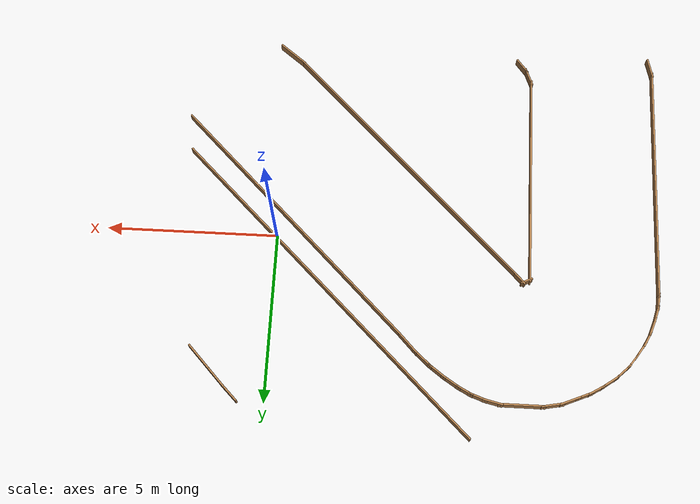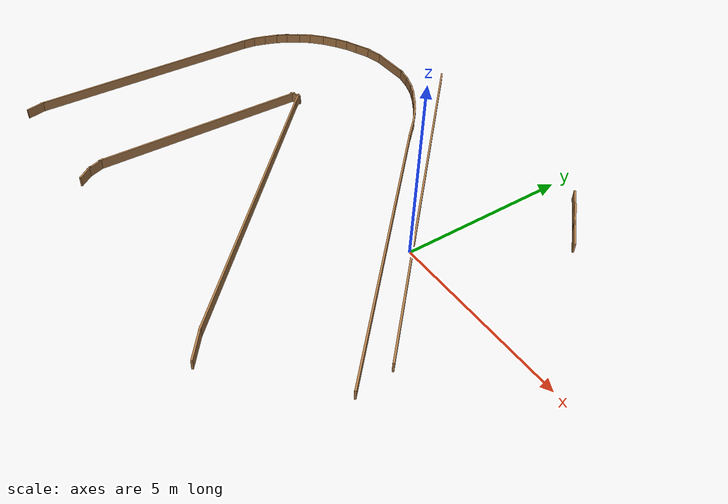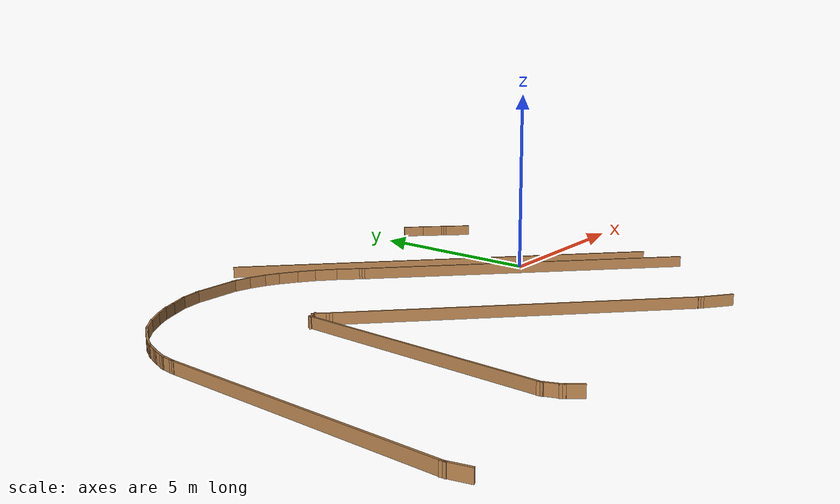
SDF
<sdf version="1.6">
 <model name="rover_racetrack">
  <pose>3.369 -0.8264 0 0 -0 0</pose>
  <link name="Wall_156">
   <collision name="Wall_156_Collision">
    <geometry><box><size>0.622658 0.05 0.3</size></box></geometry>
    <pose>0 0 0.15 0 -0 0</pose>
   </collision>
   <visual name="Wall_156_Visual">
    <pose>0 0 0.15 0 -0 0</pose>
    <geometry><box><size>0.622658 0.05 0.3</size></box></geometry>
    <material>
     <script><uri>file://media/materials/scripts/gazebo.material</uri><name>Gazebo/Wood</name></script>
     <ambient>0.435294 0.796078 0.67451 1</ambient>
    </material>
   </visual>
   <pose>-14.4098 -5.17189 0 0 -0 1.81577</pose>
  </link>
  <link name="Wall_158">
   <collision name="Wall_158_Collision">
    <geometry><box><size>7.25 0.05 0.3</size></box></geometry>
    <pose>0 0 0.15 0 -0 0</pose>
   </collision>
   <visual name="Wall_158_Visual">
    <pose>0 0 0.15 0 -0 0</pose>
    <geometry><box><size>7.25 0.05 0.3</size></box></geometry>
    <material>
     <script><uri>file://media/materials/scripts/gazebo.material</uri><name>Gazebo/Wood</name></script>
     <ambient>0.435294 0.796078 0.67451 1</ambient>
    </material>
   </visual>
   <pose>-14.4671 -1.39261 0 0 -0 1.5708</pose>
  </link>
  <link name="Wall_160">
   <collision name="Wall_160_Collision">
    <geometry><box><size>0.535083 0.05 0.3</size></box></geometry>
    <pose>0 0 0.15 0 -0 0</pose>
   </collision>
   <visual name="Wall_160_Visual">
    <pose>0 0 0.15 0 -0 0</pose>
    <geometry><box><size>0.535083 0.05 0.3</size></box></geometry>
    <material>
     <script><uri>file://media/materials/scripts/gazebo.material</uri><name>Gazebo/Wood</name></script>
     <ambient>0.435294 0.796078 0.67451 1</ambient>
    </material>
   </visual>
   <pose>-14.4492 2.34909 0 0 -0 1.47761</pose>
  </link>
  <link name="Wall_161">
   <collision name="Wall_161_Collision">
    <geometry><box><size>0.532063 0.05 0.3</size></box></geometry>
    <pose>0 0 0.15 0 -0 0</pose>
   </collision>
   <visual name="Wall_161_Visual">
    <pose>0 0 0.15 0 -0 0</pose>
    <geometry><box><size>0.532063 0.05 0.3</size></box></geometry>
    <material>
     <script><uri>file://media/materials/scripts/gazebo.material</uri><name>Gazebo/Wood</name></script>
     <ambient>0.435294 0.796078 0.67451 1</ambient>
    </material>
   </visual>
   <pose>-14.3815 2.72521 0 0 -0 1.30683</pose>
  </link>
  <link name="Wall_162">
   <collision name="Wall_162_Collision">
    <geometry><box><size>0.572452 0.05 0.3</size></box></geometry>
    <pose>0 0 0.15 0 -0 0</pose>
   </collision>
   <visual name="Wall_162_Visual">
    <pose>0 0 0.15 0 -0 0</pose>
    <geometry><box><size>0.572452 0.05 0.3</size></box></geometry>
    <material>
     <script><uri>file://media/materials/scripts/gazebo.material</uri><name>Gazebo/Wood</name></script>
     <ambient>0.435294 0.796078 0.67451 1</ambient>
    </material>
   </visual>
   <pose>-14.2618 3.109 0 0 -0 1.23412</pose>
  </link>
  <link name="Wall_163">
   <collision name="Wall_163_Collision">
    <geometry><box><size>0.50664 0.05 0.3</size></box></geometry>
    <pose>0 0 0.15 0 -0 0</pose>
   </collision>
   <visual name="Wall_163_Visual">
    <pose>0 0 0.15 0 -0 0</pose>
    <geometry><box><size>0.50664 0.05 0.3</size></box></geometry>
    <material>
     <script><uri>file://media/materials/scripts/gazebo.material</uri><name>Gazebo/Wood</name></script>
     <ambient>0.435294 0.796078 0.67451 1</ambient>
    </material>
   </visual>
   <pose>-14.1123 3.46786 0 0 -0 1.10715</pose>
  </link>
  <link name="Wall_164">
   <collision name="Wall_164_Collision">
    <geometry><box><size>0.589627 0.05 0.3</size></box></geometry>
    <pose>0 0 0.15 0 -0 0</pose>
   </collision>
   <visual name="Wall_164_Visual">
    <pose>0 0 0.15 0 -0 0</pose>
    <geometry><box><size>0.589627 0.05 0.3</size></box></geometry>
    <material>
     <script><uri>file://media/materials/scripts/gazebo.material</uri><name>Gazebo/Wood</name></script>
     <ambient>0.435294 0.796078 0.67451 1</ambient>
    </material>
   </visual>
   <pose>-13.9129 3.81177 0 0 -0 0.995372</pose>
  </link>
  <link name="Wall_165">
   <collision name="Wall_165_Collision">
    <geometry><box><size>0.520845 0.05 0.3</size></box></geometry>
    <pose>0 0 0.15 0 -0 0</pose>
   </collision>
   <visual name="Wall_165_Visual">
    <pose>0 0 0.15 0 -0 0</pose>
    <geometry><box><size>0.520845 0.05 0.3</size></box></geometry>
    <material>
     <script><uri>file://media/materials/scripts/gazebo.material</uri><name>Gazebo/Wood</name></script>
     <ambient>0.435294 0.796078 0.67451 1</ambient>
    </material>
   </visual>
   <pose>-13.6837 4.14571 0 0 -0 0.938048</pose>
  </link>
  <link name="Wall_166">
   <collision name="Wall_166_Collision">
    <geometry><box><size>0.636412 0.05 0.3</size></box></geometry>
    <pose>0 0 0.15 0 -0 0</pose>
   </collision>
   <visual name="Wall_166_Visual">
    <pose>0 0 0.15 0 -0 0</pose>
    <geometry><box><size>0.636412 0.05 0.3</size></box></geometry>
    <material>
     <script><uri>file://media/materials/scripts/gazebo.material</uri><name>Gazebo/Wood</name></script>
     <ambient>0.435294 0.796078 0.67451 1</ambient>
    </material>
   </visual>
   <pose>-13.3996 4.46469 0 0 -0 0.770906</pose>
  </link>
  <link name="Wall_167">
   <collision name="Wall_167_Collision">
    <geometry><box><size>0.628586 0.05 0.3</size></box></geometry>
    <pose>0 0 0.15 0 -0 0</pose>
   </collision>
   <visual name="Wall_167_Visual">
    <pose>0 0 0.15 0 -0 0</pose>
    <geometry><box><size>0.628586 0.05 0.3</size></box></geometry>
    <material>
     <script><uri>file://media/materials/scripts/gazebo.material</uri><name>Gazebo/Wood</name></script>
     <ambient>0.435294 0.796078 0.67451 1</ambient>
    </material>
   </visual>
   <pose>-13.0307 4.77372 0 0 -0 0.622671</pose>
  </link>
  <link name="Wall_169">
   <collision name="Wall_169_Collision">
    <geometry><box><size>0.556876 0.05 0.3</size></box></geometry>
    <pose>0 0 0.15 0 -0 0</pose>
   </collision>
   <visual name="Wall_169_Visual">
    <pose>0 0 0.15 0 -0 0</pose>
    <geometry><box><size>0.556876 0.05 0.3</size></box></geometry>
    <material>
     <script><uri>file://media/materials/scripts/gazebo.material</uri><name>Gazebo/Wood</name></script>
     <ambient>0.435294 0.796078 0.67451 1</ambient>
    </material>
   </visual>
   <pose>-12.6619 5.01794 0 0 -0 0.54042</pose>
  </link>
  <link name="Wall_170">
   <collision name="Wall_170_Collision">
    <geometry><box><size>0.529585 0.05 0.3</size></box></geometry>
    <pose>0 0 0.15 0 -0 0</pose>
   </collision>
   <visual name="Wall_170_Visual">
    <pose>0 0 0.15 0 -0 0</pose>
    <geometry><box><size>0.529585 0.05 0.3</size></box></geometry>
    <material>
     <script><uri>file://media/materials/scripts/gazebo.material</uri><name>Gazebo/Wood</name></script>
     <ambient>0.435294 0.796078 0.67451 1</ambient>
    </material>
   </visual>
   <pose>-12.313 5.19737 0 0 -0 0.404892</pose>
  </link>
  <link name="Wall_171">
   <collision name="Wall_171_Collision">
    <geometry><box><size>0.636923 0.05 0.3</size></box></geometry>
    <pose>0 0 0.15 0 -0 0</pose>
   </collision>
   <visual name="Wall_171_Visual">
    <pose>0 0 0.15 0 -0 0</pose>
    <geometry><box><size>0.636923 0.05 0.3</size></box></geometry>
    <material>
     <script><uri>file://media/materials/scripts/gazebo.material</uri><name>Gazebo/Wood</name></script>
     <ambient>0.435294 0.796078 0.67451 1</ambient>
    </material>
   </visual>
   <pose>-11.9143 5.36683 0 0 -0 0.399515</pose>
  </link>
  <link name="Wall_172">
   <collision name="Wall_172_Collision">
    <geometry><box><size>0.677854 0.05 0.3</size></box></geometry>
    <pose>0 0 0.15 0 -0 0</pose>
   </collision>
   <visual name="Wall_172_Visual">
    <pose>0 0 0.15 0 -0 0</pose>
    <geometry><box><size>0.677854 0.05 0.3</size></box></geometry>
    <material>
     <script><uri>file://media/materials/scripts/gazebo.material</uri><name>Gazebo/Wood</name></script>
     <ambient>0.435294 0.796078 0.67451 1</ambient>
    </material>
   </visual>
   <pose>-11.4308 5.51137 0 0 -0 0.189988</pose>
  </link>
  <link name="Wall_173">
   <collision name="Wall_173_Collision">
    <geometry><box><size>1.34625 0.05 0.3</size></box></geometry>
    <pose>0 0 0.15 0 -0 0</pose>
   </collision>
   <visual name="Wall_173_Visual">
    <pose>0 0 0.15 0 -0 0</pose>
    <geometry><box><size>1.34625 0.05 0.3</size></box></geometry>
    <material>
     <script><uri>file://media/materials/scripts/gazebo.material</uri><name>Gazebo/Wood</name></script>
     <ambient>0.435294 0.796078 0.67451 1</ambient>
    </material>
   </visual>
   <pose>-10.5735 5.56122 0 0 -0 0</pose>
  </link>
  <link name="Wall_174">
   <collision name="Wall_174_Collision">
    <geometry><box><size>0.590079 0.05 0.3</size></box></geometry>
    <pose>0 0 0.15 0 -0 0</pose>
   </collision>
   <visual name="Wall_174_Visual">
    <pose>0 0 0.15 0 -0 0</pose>
    <geometry><box><size>0.590079 0.05 0.3</size></box></geometry>
    <material>
     <script><uri>file://media/materials/scripts/gazebo.material</uri><name>Gazebo/Wood</name></script>
     <ambient>0.435294 0.796078 0.67451 1</ambient>
    </material>
   </visual>
   <pose>-9.76111 5.51137 0 0 0 -0.228497</pose>
  </link>
  <link name="Wall_175">
   <collision name="Wall_175_Collision">
    <geometry><box><size>0.585197 0.05 0.3</size></box></geometry>
    <pose>0 0 0.15 0 -0 0</pose>
   </collision>
   <visual name="Wall_175_Visual">
    <pose>0 0 0.15 0 -0 0</pose>
    <geometry><box><size>0.585197 0.05 0.3</size></box></geometry>
    <material>
     <script><uri>file://media/materials/scripts/gazebo.material</uri><name>Gazebo/Wood</name></script>
     <ambient>0.435294 0.796078 0.67451 1</ambient>
    </material>
   </visual>
   <pose>-9.34244 5.38677 0 0 0 -0.350728</pose>
  </link>
  <link name="Wall_176">
   <collision name="Wall_176_Collision">
    <geometry><box><size>0.533491 0.05 0.3</size></box></geometry>
    <pose>0 0 0.15 0 -0 0</pose>
   </collision>
   <visual name="Wall_176_Visual">
    <pose>0 0 0.15 0 -0 0</pose>
    <geometry><box><size>0.533491 0.05 0.3</size></box></geometry>
    <material>
     <script><uri>file://media/materials/scripts/gazebo.material</uri><name>Gazebo/Wood</name></script>
     <ambient>0.435294 0.796078 0.67451 1</ambient>
    </material>
   </visual>
   <pose>-8.96862 5.22229 0 0 0 -0.486899</pose>
  </link>
  <link name="Wall_177">
   <collision name="Wall_177_Collision">
    <geometry><box><size>0.661505 0.05 0.3</size></box></geometry>
    <pose>0 0 0.15 0 -0 0</pose>
   </collision>
   <visual name="Wall_177_Visual">
    <pose>0 0 0.15 0 -0 0</pose>
    <geometry><box><size>0.661505 0.05 0.3</size></box></geometry>
    <material>
     <script><uri>file://media/materials/scripts/gazebo.material</uri><name>Gazebo/Wood</name></script>
     <ambient>0.435294 0.796078 0.67451 1</ambient>
    </material>
   </visual>
   <pose>-8.58484 4.99302 0 0 0 -0.577192</pose>
  </link>
  <link name="Wall_178">
   <collision name="Wall_178_Collision">
    <geometry><box><size>0.634467 0.05 0.3</size></box></geometry>
    <pose>0 0 0.15 0 -0 0</pose>
   </collision>
   <visual name="Wall_178_Visual">
    <pose>0 0 0.15 0 -0 0</pose>
    <geometry><box><size>0.634467 0.05 0.3</size></box></geometry>
    <material>
     <script><uri>file://media/materials/scripts/gazebo.material</uri><name>Gazebo/Wood</name></script>
     <ambient>0.435294 0.796078 0.67451 1</ambient>
    </material>
   </visual>
   <pose>-8.17614 4.70892 0 0 0 -0.639386</pose>
  </link>
  <link name="Wall_179">
   <collision name="Wall_179_Collision">
    <geometry><box><size>0.742763 0.05 0.3</size></box></geometry>
    <pose>0 0 0.15 0 -0 0</pose>
   </collision>
   <visual name="Wall_179_Visual">
    <pose>0 0 0.15 0 -0 0</pose>
    <geometry><box><size>0.742763 0.05 0.3</size></box></geometry>
    <material>
     <script><uri>file://media/materials/scripts/gazebo.material</uri><name>Gazebo/Wood</name></script>
     <ambient>0.435294 0.796078 0.67451 1</ambient>
    </material>
   </visual>
   <pose>-7.76245 4.36501 0 0 0 -0.737815</pose>
  </link>
  <link name="Wall_180">
   <collision name="Wall_180_Collision">
    <geometry><box><size>0.848143 0.05 0.3</size></box></geometry>
    <pose>0 0 0.15 0 -0 0</pose>
   </collision>
   <visual name="Wall_180_Visual">
    <pose>0 0 0.15 0 -0 0</pose>
    <geometry><box><size>0.848143 0.05 0.3</size></box></geometry>
    <material>
     <script><uri>file://media/materials/scripts/gazebo.material</uri><name>Gazebo/Wood</name></script>
     <ambient>0.435294 0.796078 0.67451 1</ambient>
    </material>
   </visual>
   <pose>-7.30391 3.91145 0 0 0 -0.815692</pose>
  </link>
  <link name="Wall_182">
   <collision name="Wall_182_Collision">
    <geometry><box><size>9.3305 0.05 0.3</size></box></geometry>
    <pose>0 0 0.15 0 -0 0</pose>
   </collision>
   <visual name="Wall_182_Visual">
    <pose>0 0 0.15 0 -0 0</pose>
    <geometry><box><size>9.3305 0.05 0.3</size></box></geometry>
    <material>
     <script><uri>file://media/materials/scripts/gazebo.material</uri><name>Gazebo/Wood</name></script>
     <ambient>0.435294 0.796078 0.67451 1</ambient>
    </material>
   </visual>
   <pose>-3.80314 0.427186 0 0 0 -0.780553</pose>
  </link>
  <link name="Wall_242">
   <collision name="Wall_242_Collision">
    <geometry><box><size>11.9322 0.05 0.3</size></box></geometry>
    <pose>0 0 0.15 0 -0 0</pose>
   </collision>
   <visual name="Wall_242_Visual">
    <pose>0 0 0.15 0 -0 0</pose>
    <geometry><box><size>11.9322 0.05 0.3</size></box></geometry>
    <material>
     <script><uri>file://media/materials/scripts/gazebo.material</uri><name>Gazebo/Wood</name></script>
     <ambient>0.435294 0.796078 0.67451 1</ambient>
    </material>
   </visual>
   <pose>-4.89304 2.41882 0 0 -0 2.36702</pose>
  </link>
  <link name="Wall_339">
   <collision name="Wall_339_Collision">
    <geometry><box><size>0.537217 0.05 0.3</size></box></geometry>
    <pose>0 0 0.15 0 -0 0</pose>
   </collision>
   <visual name="Wall_339_Visual">
    <pose>0 0 0.15 0 -0 0</pose>
    <geometry><box><size>0.537217 0.05 0.3</size></box></geometry>
    <material>
     <script><uri>file://media/materials/scripts/gazebo.material</uri><name>Gazebo/Wood</name></script>
     <ambient>0.435294 0.796078 0.67451 1</ambient>
    </material>
   </visual>
   <pose>-10.492 -5.04348 0 0 -0 2.23484</pose>
  </link>
  <link name="Wall_340">
   <collision name="Wall_340_Collision">
    <geometry><box><size>0.590718 0.05 0.3</size></box></geometry>
    <pose>0 0 0.15 0 -0 0</pose>
   </collision>
   <visual name="Wall_340_Visual">
    <pose>0 0 0.15 0 -0 0</pose>
    <geometry><box><size>0.590718 0.05 0.3</size></box></geometry>
    <material>
     <script><uri>file://media/materials/scripts/gazebo.material</uri><name>Gazebo/Wood</name></script>
     <ambient>0.435294 0.796078 0.67451 1</ambient>
    </material>
   </visual>
   <pose>-10.6909 -4.68551 0 0 -0 1.94013</pose>
  </link>
  <link name="Wall_342">
   <collision name="Wall_342_Collision">
    <geometry><box><size>6.5 0.05 0.3</size></box></geometry>
    <pose>0 0 0.15 0 -0 0</pose>
   </collision>
   <visual name="Wall_342_Visual">
    <pose>0 0 0.15 0 -0 0</pose>
    <geometry><box><size>6.5 0.05 0.3</size></box></geometry>
    <material>
     <script><uri>file://media/materials/scripts/gazebo.material</uri><name>Gazebo/Wood</name></script>
     <ambient>0.435294 0.796078 0.67451 1</ambient>
    </material>
   </visual>
   <pose>-10.7705 -1.30501 0 0 -0 1.5708</pose>
  </link>
  <link name="Wall_343">
   <collision name="Wall_343_Collision">
    <geometry><box><size>0.365372 0.05 0.3</size></box></geometry>
    <pose>0 0 0.15 0 -0 0</pose>
   </collision>
   <visual name="Wall_343_Visual">
    <pose>0 0 0.15 0 -0 0</pose>
    <geometry><box><size>0.365372 0.05 0.3</size></box></geometry>
    <material>
     <script><uri>file://media/materials/scripts/gazebo.material</uri><name>Gazebo/Wood</name></script>
     <ambient>0.435294 0.796078 0.67451 1</ambient>
    </material>
   </visual>
   <pose>-10.6734 1.9167 0 0 -0 0.448639</pose>
  </link>
  <link name="Wall_344">
   <collision name="Wall_344_Collision">
    <geometry><box><size>0.505939 0.05 0.3</size></box></geometry>
    <pose>0 0 0.15 0 -0 0</pose>
   </collision>
   <visual name="Wall_344_Visual">
    <pose>0 0 0.15 0 -0 0</pose>
    <geometry><box><size>0.505939 0.05 0.3</size></box></geometry>
    <material>
     <script><uri>file://media/materials/scripts/gazebo.material</uri><name>Gazebo/Wood</name></script>
     <ambient>0.435294 0.796078 0.67451 1</ambient>
    </material>
   </visual>
   <pose>-10.4544 1.83381 0 0 0 -0.815692</pose>
  </link>
  <link name="Wall_346">
   <collision name="Wall_346_Collision">
    <geometry><box><size>9.42835 0.05 0.3</size></box></geometry>
    <pose>0 0 0.15 0 -0 0</pose>
   </collision>
   <visual name="Wall_346_Visual">
    <pose>0 0 0.15 0 -0 0</pose>
    <geometry><box><size>9.42835 0.05 0.3</size></box></geometry>
    <material>
     <script><uri>file://media/materials/scripts/gazebo.material</uri><name>Gazebo/Wood</name></script>
     <ambient>0.435294 0.796078 0.67451 1</ambient>
    </material>
   </visual>
   <pose>-7.04535 -1.56947 0 0 0 -0.783353</pose>
  </link>
  <link name="Wall_348">
   <collision name="Wall_348_Collision">
    <geometry><box><size>0.990622 0.05 0.3</size></box></geometry>
    <pose>0 0 0.15 0 -0 0</pose>
   </collision>
   <visual name="Wall_348_Visual">
    <pose>0 0 0.15 0 -0 0</pose>
    <geometry><box><size>0.990622 0.05 0.3</size></box></geometry>
    <material>
     <script><uri>file://media/materials/scripts/gazebo.material</uri><name>Gazebo/Wood</name></script>
     <ambient>0.435294 0.796078 0.67451 1</ambient>
    </material>
   </visual>
   <pose>-3.42727 -5.1022 0 0 0 -0.6641</pose>
  </link>
  <link name="Wall_426">
   <collision name="Wall_426_Collision">
    <geometry><box><size>0.689054 0.05 0.3</size></box></geometry>
    <pose>0 0 0.15 0 -0 0</pose>
   </collision>
   <visual name="Wall_426_Visual">
    <pose>0 0 0.15 0 -0 0</pose>
    <geometry><box><size>0.689054 0.05 0.3</size></box></geometry>
    <material>
     <script><uri>file://media/materials/scripts/gazebo.material</uri><name>Gazebo/Wood</name></script>
     <ambient>0.435294 0.796078 0.67451 1</ambient>
    </material>
   </visual>
   <pose>-2.38723 5.60512 0 0 0 -0.785398</pose>
  </link>
  <link name="Wall_428">
   <collision name="Wall_428_Collision">
    <geometry><box><size>0.840326 0.05 0.3</size></box></geometry>
    <pose>0 0 0.15 0 -0 0</pose>
   </collision>
   <visual name="Wall_428_Visual">
    <pose>0 0 0.15 0 -0 0</pose>
    <geometry><box><size>0.840326 0.05 0.3</size></box></geometry>
    <material>
     <script><uri>file://media/materials/scripts/gazebo.material</uri><name>Gazebo/Wood</name></script>
     <ambient>0.435294 0.796078 0.67451 1</ambient>
    </material>
   </visual>
   <pose>-1.96032 5.16297 0 0 0 -0.816638</pose>
  </link>
  <link name="Wall_429">
   <collision name="Wall_429_Collision">
    <geometry><box><size>0.904984 0.05 0.3</size></box></geometry>
    <pose>0 0 0.15 0 -0 0</pose>
   </collision>
   <visual name="Wall_429_Visual">
    <pose>0 0 0.15 0 -0 0</pose>
    <geometry><box><size>0.904984 0.05 0.3</size></box></geometry>
    <material>
     <script><uri>file://media/materials/scripts/gazebo.material</uri><name>Gazebo/Wood</name></script>
     <ambient>0.435294 0.796078 0.67451 1</ambient>
    </material>
   </visual>
   <pose>-1.4648 4.63696 0 0 0 -0.813962</pose>
  </link>
  <static>1</static>
 </model>
</sdf>
